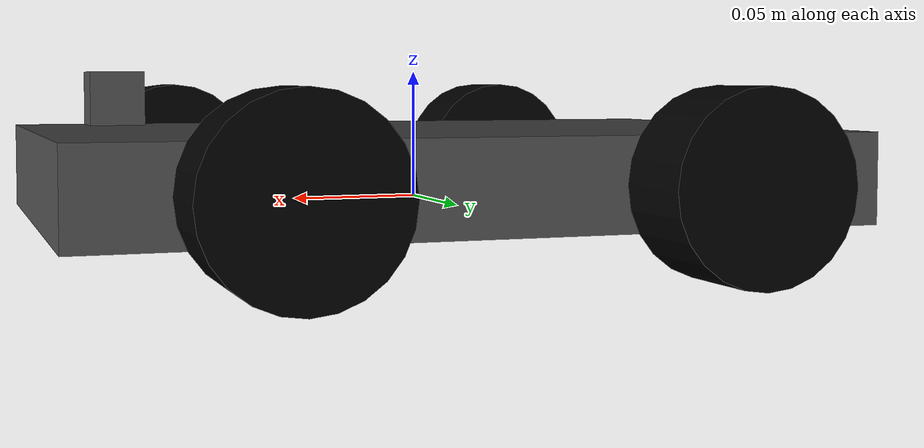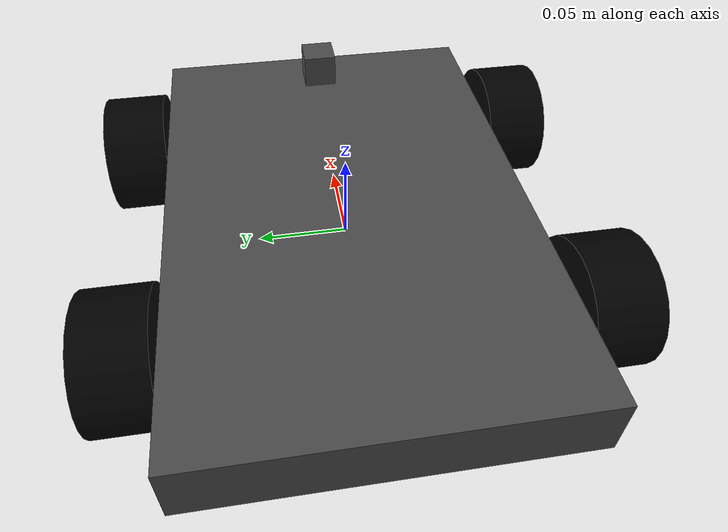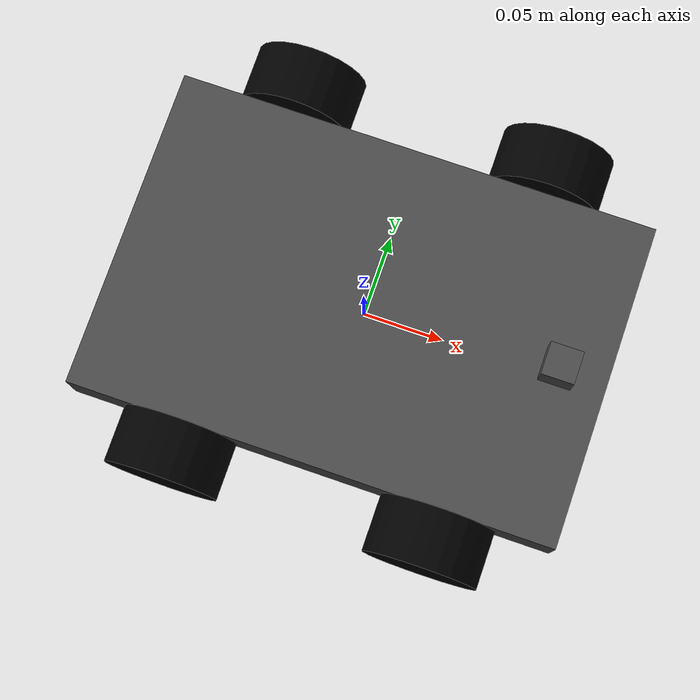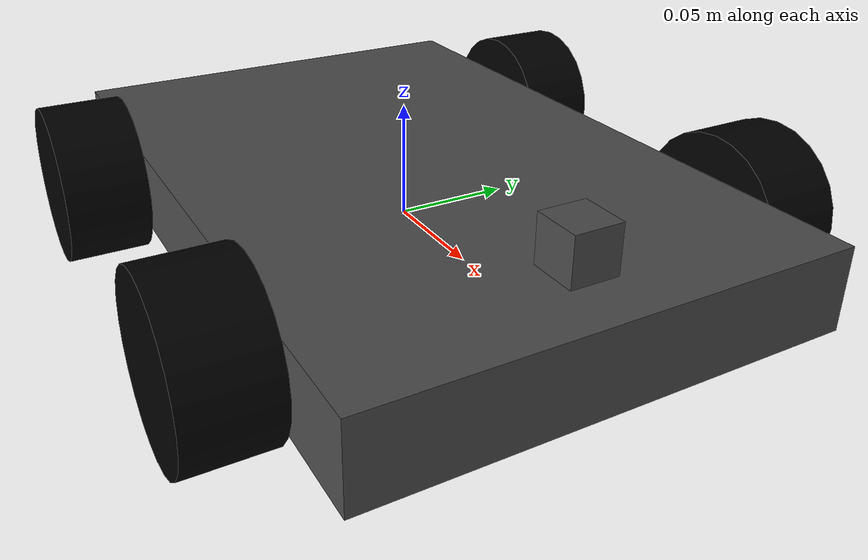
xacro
<?xml version="1.0"?>
<robot xmlns:xacro="http://www.ros.org/wiki/xacro" >

    <xacro:include filename="inertial_macros.xacro"/>

    <material name="white">
        <color rgba="1.0 1.0 1.0 1.0"/>
    </material>

    <material name="orange">
        <color rgba="1.0 0.3 0.1 1.0"/>
    </material>

    <material name="blue">
        <color rgba="0.2 0.2 1.0 1.0"/>
    </material>

    <material name="black">
        <color rgba="0.0 0.0 0.0 1.0"/>
    </material>

    <material name="Gray">
        <color rgba="0.3 0.3 0.3 1.0"/>
    </material>

    <!-- Base Link -->
    <link name="base_link">
    </link>

    <joint name="chassis_joint" type="fixed">
        <origin xyz="0.0 0.0 0.0" rpy="0.0 0.0 0.0"/>
        <parent link="base_link"/>
        <child link="chassis"/>
        <axis xyz="0.0 0.0 0.0"/>
        <limit lower="0.0" upper="0.0" effort="0.0" velocity="0.0"/>
    </joint>

    <!-- Chassis Link-->
    <link name="chassis">
        <visual>
            <origin xyz="0.0 0.0 0.01" rpy="0.0 0.0 0.0"/>

            <geometry>
                <box size=".3 0.2 0.035"/>
            </geometry>

            <material name="Gray">
                <color rgba="0.3 0.3 0.3 1.0"/>
            </material>
        </visual>

        <collision>
            <origin xyz="0.0 0.0 0.0" rpy="0.0 0.0 0.0"/>
            <geometry>
                <box size="0.3 0.2 0.035"/>
            </geometry>
        </collision>

        <xacro:inertial_box mass = "0.5"  x = "0.3" y = "0.2" z = "0.035">
            <origin xyz="0.0 0.0 0.01" rpy="0.0 0.0 0.0"/>

        </xacro:inertial_box>
    </link>

    <gazebo reference = "chassis">
        <material>
            Gazebo/White
        </material>
    </gazebo>

    <!-- front face Link -->

    <joint name="front_face_joint" type="fixed">
        <origin xyz="0.0 0.0 0.0" rpy="0.0 0.0 0.0"/>
        <parent link="base_link"/>
        <child link="Front"/>
        <axis xyz="0.0 0.0 0.0"/>
        <limit lower="0.0" upper="0.0" effort="0.0" velocity="0.0"/>
    </joint>

    <link name="Front">
        <visual>
            <origin xyz="0.12 0.0 0.04" rpy="0.0 0.0 0.0"/>

            <geometry>
                <box size=".02 0.02 0.02"/>
            </geometry>

            <material name="Gray">
                <color rgba="0.3 0.3 0.3 1.0"/>
            </material>
        </visual>

        <collision>
            <origin xyz="0.0 0.0 0.0" rpy="0.0 0.0 0.0"/>
            <geometry>
                <box size="0.3 0.2 0.035"/>
            </geometry>
        </collision>

        <xacro:inertial_box mass = "0.5"  x = "0.3" y = "0.2" z = "0.035">
            <origin xyz="0.0 0.0 0.01" rpy="0.0 0.0 0.0"/>

        </xacro:inertial_box>
    </link>

    <gazebo reference = "Front">
        <material>
            Gazebo/Blue
        </material>
    </gazebo>

    <!--  Front Left Wheel Link-->
    <joint name="front_left_wheel_joint" type="continuous">

        <parent link="base_link"/>
        <child link="front_left_wheel"/>
        <origin xyz="0.08 0.118 0.01" rpy="1.57 0.0 0.0"/>
        <axis xyz="0.0 0.0 -0.1"/>

    </joint>

    <link name="front_left_wheel">
        <visual>

            <geometry>
                <cylinder radius=".035" length="0.035"/>
            </geometry>

            <material name="orange">
                <color rgba="0.0 0.0 0.0 1.0"/>
            </material>
        </visual>

        <collision>
            <geometry>
                <cylinder radius="0.035" length="0.035"/>
            </geometry>
        </collision>

        <xacro:inertial_cylinder mass="0.1" radius="0.035" length="0.035">
            <origin xyz="0.0 0.0 0.0" rpy="0.0 0.0 0.0"/>
        </xacro:inertial_cylinder>

    </link>

    <gazebo reference = "front_left_wheel">
        <material>
            Gazebo/Orange
        </material>
    </gazebo>

    <!-- Front Right Wheel Link -->
    <joint name="front_right_wheel_joint" type="continuous">

        <parent link="base_link"/>
        <child link="front_right_wheel"/>
        <origin xyz="0.08 -0.118 0.01" rpy="1.57 0.0 0.0"/>
        <axis xyz="0.0 0.0 -0.1"/>

    </joint>

    <link name="front_right_wheel">
        <visual>

            <geometry>
                <cylinder radius=".035" length="0.035"/>
            </geometry>

            <material name="orange">
                <color rgba="0.0 0.0 0.0 1.0"/>
            </material>
        </visual>

        <collision>
            <geometry>
                <cylinder radius="0.035" length="0.035"/>
            </geometry>
        </collision>

        <xacro:inertial_cylinder mass="0.1" radius="0.035" length="0.035">
            <origin xyz="0.0 0.0 0.0" rpy="0.0 0.0 0.0"/>
        </xacro:inertial_cylinder>

    </link>

    <gazebo reference = "front_right_wheel">
        <material>
            Gazebo/Orange
        </material>
    </gazebo>

    <!-- Back Left Wheel Link  -->
    <joint name="back_left_wheel_joint" type="continuous">

        <parent link="base_link"/>
        <child link="back_left_wheel"/>

        <origin xyz="-0.08 0.118 0.01" rpy="1.57 0.0 0.0"/>
        <axis xyz="0.0 0.0 -0.1"/>

    </joint>

    <link name="back_left_wheel">
        <visual>

            <geometry>
                <cylinder radius=".035" length="0.035"/>
            </geometry>

            <material name="orange">
                <color rgba="0.0 0.0 0.0 1.0"/>
            </material>
        </visual>

        <collision>
            <geometry>
                <cylinder radius="0.035" length="0.035"/>
            </geometry>
        </collision>

        <xacro:inertial_cylinder mass="0.1" radius="0.035" length="0.035">
            <origin xyz="0.0 0.0 0.0" rpy="0.0 0.0 0.0"/>
        </xacro:inertial_cylinder>

    </link>

    <gazebo reference = "back_left_wheel">
        <material>
            Gazebo/Orange
        </material>
    </gazebo>

    <!-- Back Right Wheel Link -->
    <joint name="back_right_wheel_joint" type="continuous">

        <parent link="base_link"/>
        <child link="back_right_wheel"/>

        <origin xyz="-0.08 -0.118 0.01" rpy="1.57 0.0 0.0"/>
        <axis xyz="0.0 0.0 -0.1"/>

    </joint>

    <link name="back_right_wheel">
        <visual>

            <geometry>
                <cylinder radius=".035" length="0.035"/>
            </geometry>

            <material name="orange">
                <color rgba="0.0 0.0 0.0 1.0"/>
            </material>
        </visual>

        <collision>
            <geometry>
                <cylinder radius="0.035" length="0.035"/>
            </geometry>
        </collision>

        <xacro:inertial_cylinder mass="0.1" radius="0.035" length="0.035">
            <origin xyz="0.0 0.0 0.0" rpy="0.0 0.0 0.0"/>
        </xacro:inertial_cylinder>

    </link>

    <gazebo reference = "back_right_wheel">
        <material>
            Gazebo/Orange
        </material>
    </gazebo>

    </robot>
